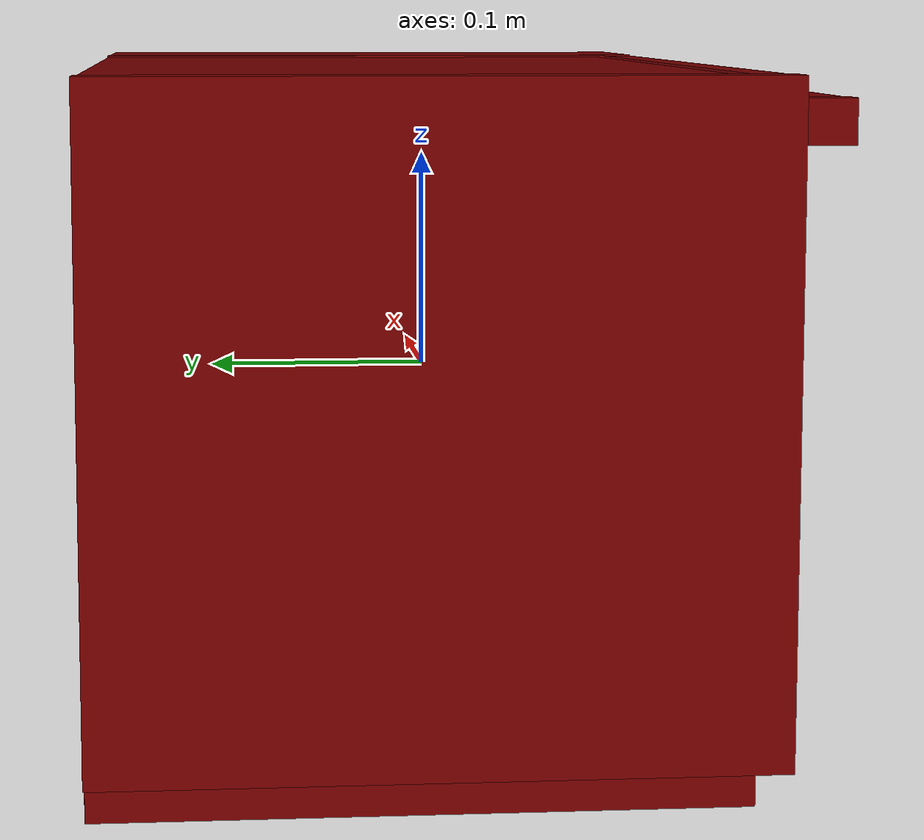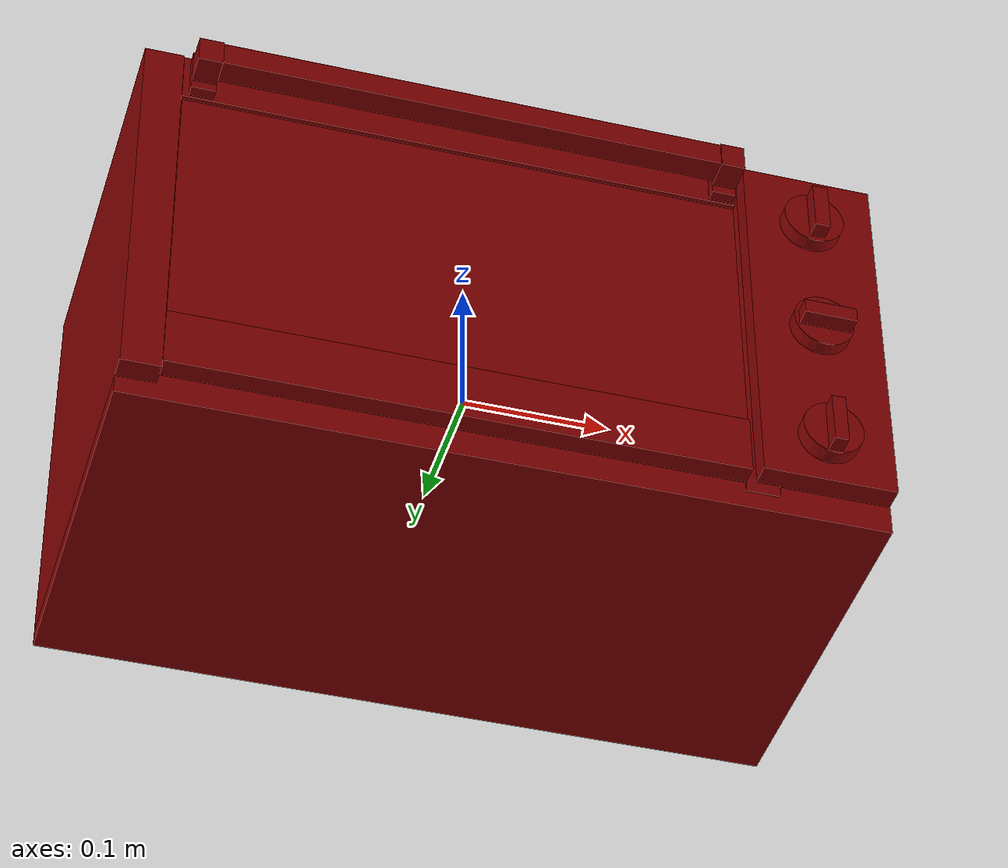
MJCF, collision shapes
<?xml version='1.0' encoding='UTF-8'?>
<mujoco model="model">
  <option timestep="0.002" gravity="0.0 0.0 -9.81"/>
  <compiler angle="radian"/>
  <asset>
    <mesh file="visuals/door.obj" name="door_vis"/>
    <mesh file="visuals/knob_function.obj" name="knob_function_vis"/>
    <mesh file="visuals/knob_temp.obj" name="knob_temp_vis"/>
    <mesh file="visuals/knob_time.obj" name="knob_time_vis"/>
    <mesh file="visuals/Body001.obj" name="Body001_vis"/>
    <mesh file="visuals/tray0.obj" name="tray0_vis"/>
    <mesh file="visuals/window.obj" name="window_vis"/>
    <texture file="visuals/T_BC001.png" name="Body001_material" type="2d"/>
    <material name="Body001_material" rgba="1 1 1 1.0" texture="Body001_material" shininess="0.1" specular="2"/>
    <texture file="visuals/T_BC001.png" name="door_material" type="2d"/>
    <material name="door_material" rgba="1 1 1 1.0" texture="door_material" shininess="0.1" specular="2"/>
    <texture file="visuals/T_BC001.png" name="window_material" type="2d"/>
    <material name="window_material" rgba="1 1 1 0.800000011920929" texture="window_material" shininess="0.5" specular="0.3103448502657381"/>
    <texture file="visuals/T_BC001.png" name="knob_function_material" type="2d"/>
    <material name="knob_function_material" rgba="1 1 1 1.0" texture="knob_function_material" shininess="0.141421377658844" specular="0.3103448502657381"/>
    <texture file="visuals/T_BC001.png" name="knob_temp_material" type="2d"/>
    <material name="knob_temp_material" rgba="1 1 1 1.0" texture="knob_temp_material" shininess="0.141421377658844" specular="0.3103448502657381"/>
    <texture file="visuals/T_BC001.png" name="knob_time_material" type="2d"/>
    <material name="knob_time_material" rgba="1 1 1 1.0" texture="knob_time_material" shininess="0.141421377658844" specular="0.3103448502657381"/>
    <texture file="visuals/T_BC001.png" name="tray0_material" type="2d"/>
    <material name="tray0_material" rgba="1 1 1 1.0" texture="tray0_material" shininess="0.1" specular="4"/>
  </asset>
  <default>
    <default class="visual">
      <geom conaffinity="0" contype="0" group="1" type="mesh"/>
    </default>
    <default class="collision">
      <geom group="0" rgba="0.5 0 0 0.5"/>
    </default>
    <default class="spawn">
      <geom group="0" rgba="1 1 1 0.5" contype="0" conaffinity="0"/>
      <site group="0" rgba="1 1 1 0.5"/>
    </default>
    <default class="region">
      <geom group="1" conaffinity="0" contype="0" rgba="0 1 0 0"/>
    </default>
  </default>
  <worldbody>
    <body>
      <body name="object">
        <geom mesh="Body001_vis" type="mesh" solimp="0.998 0.998 0.001" solref="0.001 1" friction="0.95 0.3 0.1" class="visual" material="Body001_material"/>
        <geom class="collision" type="box" pos="0.00000000 0.14190295 -0.00300144" size="0.25166893005371094 0.009898818098008633 0.14056716859340668" quat="1.0 0.0 0.0 0.0"/>
        <geom class="collision" type="box" pos="0.00000000 0.02233307 0.13636181" size="0.2516690194606781 0.12996311485767365 0.005646197125315666" quat="1.0 0.0 0.0 0.0"/>
        <geom class="collision" type="box" pos="0.00000000 0.02075706 -0.12096495" size="0.25166910886764526 0.13100096583366394 0.022605661302804947" quat="1.0 0.0 0.0 0.0"/>
        <geom class="collision" type="box" pos="-0.23859359 0.01323468 0.00591876" size="0.01307748444378376 0.13923628628253937 0.13695399463176727" quat="1.0 0.0 0.0 0.0"/>
        <geom class="collision" type="box" pos="0.20641911 0.01282766 0.01020149" size="0.04505207762122154 0.13870811462402344 0.13274236023426056" quat="1.0 0.0 0.0 0.0"/>
        <geom class="collision" type="box" pos="0.14928284 0.02226850 0.02862730" size="0.0049460954032838345 0.10656639188528061 0.006662145256996155" quat="1.0 0.0 0.0 0.0"/>
        <geom class="collision" type="box" pos="0.15139556 0.02226850 -0.01695001" size="0.0049460954032838345 0.10656632483005524 0.006662145256996155" quat="1.0 0.0 0.0 0.0"/>
        <geom class="collision" type="box" pos="-0.22235239 0.02226850 -0.01745158" size="0.0049460954032838345 0.10656643658876419 0.006662145256996155" quat="1.0 0.0 0.0 0.0"/>
        <geom class="collision" type="box" pos="-0.22175395 0.02226850 0.02793721" size="0.0049460954032838345 0.1065661832690239 0.006662145256996155" quat="1.0 0.0 0.0 0.0"/>
        <geom class="collision" type="box" pos="0.16564651 0.02067891 0.00591876" size="0.011410470120608807 0.13179370760917664 0.1369556337594986" quat="1.0 0.0 0.0 0.0"/>
        <body name="door">
          <joint axis="1.0 0.0 0.0" pos="-0.03542550 -0.12475010 -0.12485004" limited="true" name="door_joint" range="0.0 1.5007963267948966" type="hinge" damping="1" frictionloss="1" armature=".01" stiffness="0.05"/>
          <geom mesh="door_vis" type="mesh" solimp="0.998 0.998 0.001" solref="0.001 1" friction="0.95 0.3 0.1" class="visual" material="door_material"/>
          <geom class="collision" type="box" pos="-0.03392961 -0.14391804 0.12439823" size="0.1724206954240799 0.008540554903447628 0.008540555834770203" quat="1.0 0.0 0.0 0.0" name="door_handle_main"/>
          <geom class="collision" type="box" pos="-0.21250145 -0.14288765 0.12382930" size="0.008210696280002594 0.010478229261934757 0.009354672394692898" quat="1.0 0.0 0.0 0.0"/>
          <geom class="collision" type="box" pos="-0.21250145 -0.12860912 0.12429745" size="0.008210696280002594 0.004345485009253025 0.015908753499388695" quat="1.0 0.0 0.0 0.0"/>
          <geom class="collision" type="box" pos="0.14405532 -0.14288765 0.12382930" size="0.00813705287873745 0.010478229261934757 0.009354672394692898" quat="1.0 0.0 0.0 0.0"/>
          <geom class="collision" type="box" pos="0.14405532 -0.12860912 0.12429745" size="0.00813705287873745 0.004345485009253025 0.015908753499388695" quat="1.0 0.0 0.0 0.0"/>
          <geom class="collision" type="box" pos="-0.03550911 -0.11805617 -0.10416639" size="0.18964214622974396 0.006914790719747543 0.020642021670937538" quat="1.0 0.0 0.0 0.0"/>
          <geom class="collision" type="box" pos="-0.03550911 -0.11805617 0.12480529" size="0.18964214622974396 0.006914790719747543 0.017781980335712433" quat="1.0 0.0 0.0 0.0" name="door_main"/>
          <body name="window">
            <geom mesh="window_vis" type="mesh" solimp="0.998 0.998 0.001" solref="0.001 1" friction="0.95 0.3 0.1" class="visual" material="window_material"/>
            <geom class="collision" type="box" pos="-0.03512085 -0.11892589 0.01398626" size="0.18925386667251587 0.0024740940425544977 0.10716895014047623" quat="1.0 0.0 0.0 0.0"/>
          </body>
        </body>
        <body name="knob_function">
          <joint axis="0.0 1.0 0.0" pos="0.20634466 -0.13715464 0.00413724" limited="true" name="knob_function_joint" range="0.0 2.6179938779914944" type="hinge" damping="0.05" armature="1" frictionloss="0.75"/>
          <geom mesh="knob_function_vis" type="mesh" solimp="0.998 0.998 0.001" solref="0.001 1" friction="0.95 0.3 0.1" class="visual" material="knob_function_material"/>
          <geom class="collision" type="cylinder" pos="0.20627037 -0.13252773 0.00399472" size="0.020695757120847702 0.005031688138842583" quat="0.7071068286895752 0.7071067690849304 0.0 0.0" friction="100 0.5 0.01"/>
          <geom class="collision" type="box" pos="0.20650963 -0.14350613 0.00299513" size="0.017808953300118446 0.0059393104165792465 0.005275501403957605" quat="1.0 0.0 0.0 0.0" name="knob_function_main" friction="100 0.5 0.01"/>
        </body>
        <body name="knob_temp">
          <joint axis="0.0 1.0 0.0" pos="0.20581545 -0.13715464 0.09725171" limited="true" name="knob_temp_joint" range="0.0 5.672320068981571" type="hinge" damping="0.05" armature="1" frictionloss="0.75"/>
          <geom mesh="knob_temp_vis" type="mesh" solimp="0.998 0.998 0.001" solref="0.001 1" friction="0.95 0.3 0.1" class="visual" material="knob_temp_material"/>
          <geom class="collision" type="cylinder" pos="0.20545778 -0.13250776 0.09714064" size="0.020842524245381355 0.005300640594214201" quat="0.7071068286895752 0.7071067690849304 0.0 0.0" friction="100 0.5 0.01"/>
          <geom class="collision" type="box" pos="0.20650963 -0.14350613 0.09788212" size="0.005275501869618893 0.005939311347901821 0.017808977514505386" quat="1.0 0.0 0.0 0.0" name="knob_temp_main" friction="100 0.5 0.01"/>
        </body>
        <body name="knob_time">
          <joint axis="0.0 1.0 0.0" pos="0.20634466 -0.13715464 -0.08874768" limited="true" name="knob_time_joint" range="0.0 4.625122517784973" type="hinge" damping="0.05" armature="1" frictionloss="0.75"/>
          <geom mesh="knob_time_vis" type="mesh" solimp="0.998 0.998 0.001" solref="0.001 1" friction="0.95 0.3 0.1" class="visual" material="knob_time_material"/>
          <geom class="collision" type="cylinder" pos="0.20614102 -0.13216564 -0.08879898" size="0.02046852931380272 0.0056593469344079494" quat="0.7071068286895752 0.7071067690849304 0.0 0.0" friction="100 0.5 0.01"/>
          <geom class="collision" type="box" pos="0.20617412 -0.14350613 -0.08978327" size="0.004681936465203762 0.0059393420815467834 0.017809081822633743" quat="1.0 0.0 0.0 0.0" name="knob_time_main" friction="100 0.5 0.01"/>
        </body>
        <body name="tray0">
          <geom class="region" name="reg_tray0" type="box" pos="-0.03478327 0.021030494999999996 0.054207455" size="0.15936697 0.091237765 0.077148125"/>
          <joint axis="0.0 -1.0 0.0" pos="-0.03561486 0.02026958 -0.01939458" limited="true" name="tray0_joint" range="0.0 0.18" type="slide" damping="1" frictionloss="1" armature=".01" stiffness="0.05"/>
          <geom mesh="tray0_vis" type="mesh" solimp="0.998 0.998 0.001" solref="0.001 1" friction="0.95 0.3 0.1" class="visual" material="tray0_material"/>
          <geom class="collision" type="box" pos="0.12948549 -0.07013910 -0.01727862" size="0.010846824385225773 0.007289346773177385 0.0014210442313924432" quat="0.8021135926246643 -0.15250755846500397 -0.529046893119812 -0.23122410476207733"/>
          <geom class="collision" type="box" pos="0.14234428 0.02031139 -0.00892012" size="0.006102641578763723 0.09273609519004822 0.001113771228119731" quat="1.0 0.0 0.0 0.0"/>
          <geom class="collision" type="box" pos="-0.03487074 0.02155055 -0.02569018" size="0.16405700147151947 0.09724215418100357 0.0009459041757509112" quat="1.0 0.0 0.0 0.0"/>
          <geom class="collision" type="box" pos="-0.20452100 0.02001522 -0.01727862" size="0.010846824385225773 0.08808588981628418 0.0014210442313924432" quat="0.8347759246826172 0.0 0.5505897998809814 0.0"/>
          <geom class="collision" type="box" pos="-0.03823434 -0.08074077 -0.01678021" size="0.010846824385225773 0.1540035903453827 0.0014210460940375924" quat="0.5600182414054871 -0.43171703815460205 0.43171706795692444 0.5600181818008423"/>
          <geom class="collision" type="box" pos="0.13378993 0.02001522 -0.01727862" size="0.010846824385225773 0.08808588981628418 0.0014210442313924432" quat="0.8347759246826172 0.0 -0.5505897998809814 0.0"/>
          <geom class="collision" type="box" pos="-0.03823434 0.12208487 -0.01678021" size="0.010846824385225773 0.1540035903453827 0.0014210460940375924" quat="0.5600182414054871 0.43171703815460205 0.43171706795692444 -0.5600181818008423"/>
          <geom class="collision" type="box" pos="-0.20067307 -0.07013910 -0.01727862" size="0.010846824385225773 0.007289346773177385 0.0014210442313924432" quat="0.8021135926246643 -0.15250755846500397 0.529046893119812 0.23122410476207733"/>
          <geom class="collision" type="box" pos="-0.19245958 -0.07767505 -0.01727862" size="0.010846824385225773 0.007289346773177385 0.0014210442313924432" quat="0.7184901833534241 -0.2803136706352234 0.4738919138908386 0.42499712109565735"/>
          <geom class="collision" type="box" pos="-0.21335873 0.02031139 -0.00892012" size="0.006144804880023003 0.09273609519004822 0.001113771228119731" quat="1.0 0.0 0.0 0.0"/>
          <geom class="collision" type="box" pos="-0.03560606 -0.08451283 -0.00892012" size="0.16505731642246246 0.0028132989536970854 0.001113771228119731" quat="1.0 0.0 0.0 0.0"/>
          <geom class="collision" type="box" pos="-0.21109600 -0.07427681 -0.00892012" size="0.006468057632446289 0.006715795490890741 0.001113771228119731" quat="1.0 0.0 0.0 0.0"/>
          <geom class="collision" type="box" pos="-0.20363049 -0.08046910 -0.00892012" size="0.004431259352713823 0.006074630655348301 0.001113771228119731" quat="0.8660538196563721 0.0 0.0 0.4999507665634155"/>
          <geom class="collision" type="box" pos="-0.20352806 0.12067407 -0.00892012" size="0.004431259352713823 0.006074630655348301 0.001113771228119731" quat="0.8660538196563721 0.0 -0.0 -0.4999507665634155"/>
          <geom class="collision" type="box" pos="-0.21106140 0.11518411 -0.00892012" size="0.004431258421391249 0.005167094059288502 0.001113771228119731" quat="0.9630977511405945 0.0 -0.0 -0.26915186643600464"/>
          <geom class="collision" type="box" pos="-0.19245958 0.11785073 -0.01727862" size="0.010846824385225773 0.007289346773177385 0.0014210442313924432" quat="0.7184903025627136 0.2803135812282562 0.4738919138908386 -0.4249970018863678"/>
          <geom class="collision" type="box" pos="-0.20067307 0.11031480 -0.01727862" size="0.010846824385225773 0.007289346773177385 0.0014210442313924432" quat="0.8021135926246643 0.15250757336616516 0.529046893119812 -0.23122413456439972"/>
          <geom class="collision" type="box" pos="-0.03560606 0.12563230 -0.00892012" size="0.16505731642246246 0.0028132989536970854 0.001113771228119731" quat="1.0 0.0 0.0 0.0"/>
          <geom class="collision" type="box" pos="0.12958029 0.11031480 -0.01727862" size="0.010846824385225773 0.007289346773177385 0.0014210442313924432" quat="0.8021135926246643 0.15250757336616516 -0.529046893119812 0.23122413456439972"/>
          <geom class="collision" type="box" pos="0.12127201 0.11785073 -0.01727862" size="0.010846824385225773 0.007289346773177385 0.0014210442313924432" quat="0.7184901833534241 0.2803136706352234 -0.4738919138908386 0.42499712109565735"/>
          <geom class="collision" type="box" pos="0.13996162 0.11467198 -0.00892012" size="0.004431259352713823 0.005167094990611076 0.001113771228119731" quat="0.9630977511405945 0.0 0.0 0.26915183663368225"/>
          <geom class="collision" type="box" pos="0.13217953 0.12064479 -0.00892012" size="0.004431259352713823 0.006074630655348301 0.001113771228119731" quat="0.8660538196563721 0.0 0.0 0.4999507665634155"/>
          <geom class="collision" type="box" pos="0.13180733 -0.08020573 -0.00892012" size="0.004431259352713823 0.006074630655348301 0.001113771228119731" quat="0.8660538196563721 0.0 -0.0 -0.4999507665634155"/>
          <geom class="collision" type="box" pos="0.13953815 -0.07503534 -0.00892012" size="0.004431258421391249 0.005167094059288502 0.001113771228119731" quat="0.9630977511405945 0.0 -0.0 -0.26915186643600464"/>
          <geom class="collision" type="box" pos="0.12127201 -0.07767505 -0.01727862" size="0.010846824385225773 0.007289346773177385 0.0014210442313924432" quat="0.7184906601905823 -0.28031325340270996 -0.473891943693161 -0.42499658465385437"/>
        </body>
        <geom class="region" name="reg_int" type="box" pos="-0.036755355 0.014083475000000005 0.017927405" size="0.17992490500000002 0.11422547499999999 0.11342817499999999"/>
        <geom class="region" name="reg_main" type="box" pos="-4.999999997368221e-09 0.013382000000000005 0.0" size="0.252709015 0.141011 0.14463454"/>
      </body>
    </body>
  </worldbody>
  <actuator>
    <motor name="door_joint_actuator" joint="door_joint" gear="50"/>
    <motor name="knob_function_joint_actuator" joint="knob_function_joint" gear="50"/>
    <motor name="knob_temp_joint_actuator" joint="knob_temp_joint" gear="50"/>
    <motor name="knob_time_joint_actuator" joint="knob_time_joint" gear="50"/>
    <motor name="tray0_joint_actuator" joint="tray0_joint" gear="50"/>
  </actuator>
</mujoco>
